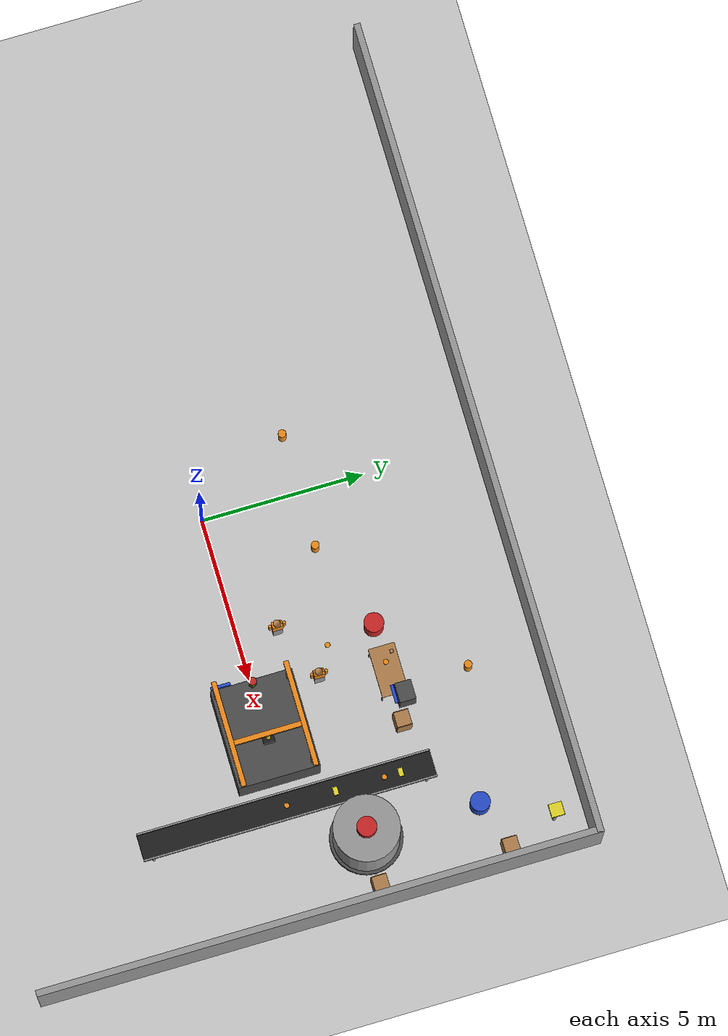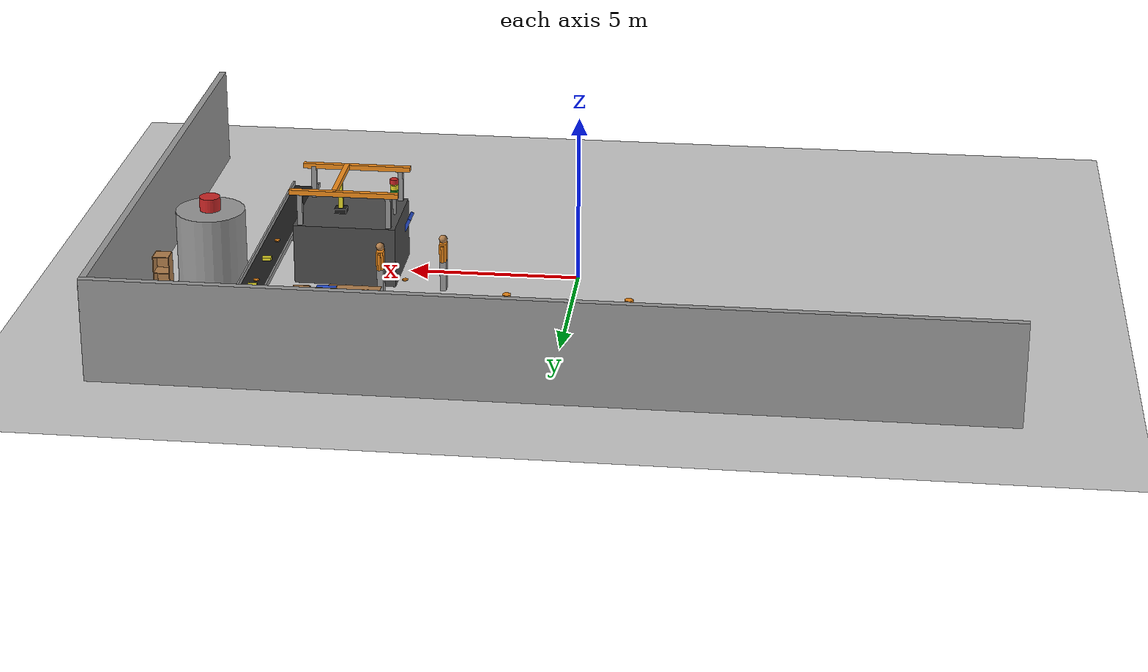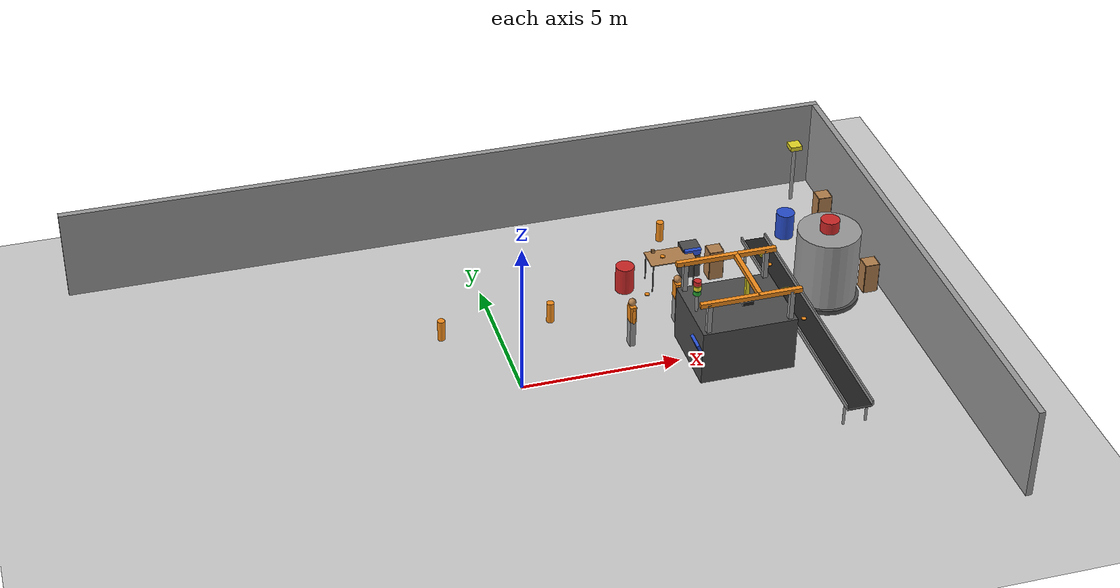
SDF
<sdf version="1.7">
 <world name="default">
  <model name="ground_plane">
   <static>1</static>
   <link name="link">
    <collision name="collision">
     <geometry><plane><normal>0 0 1</normal><size>100 100</size></plane></geometry>
     <surface><friction><ode><mu>100</mu><mu2>50</mu2></ode></friction></surface>
    </collision>
    <visual name="visual">
     <cast_shadows>0</cast_shadows>
     <geometry><plane><normal>0 0 1</normal><size>100 100</size></plane></geometry>
     <material>
      <script><uri>file://media/materials/scripts/gazebo.material</uri><name>Gazebo/Grey</name></script>
     </material>
    </visual>
   </link>
  </model>
  <model name="table_2">
   <static>1</static>
   <link name="link">
    <collision name="surface">
     <pose>0 0 1 0 -0 0</pose>
     <geometry><box><size>1.5 0.8 0.03</size></box></geometry>
     <surface><friction><ode><mu>0.6</mu><mu2>0.6</mu2></ode></friction></surface>
    </collision>
    <visual name="visual1">
     <pose>0 0 1 0 -0 0</pose>
     <geometry><box><size>1.5 0.8 0.03</size></box></geometry>
     <material>
      <script><uri>file://media/materials/scripts/gazebo.material</uri><name>Gazebo/Wood</name></script>
     </material>
    </visual>
    <collision name="front_left_leg">
     <pose>0.68 0.38 0.5 0 -0 0</pose>
     <geometry><cylinder><radius>0.02</radius><length>1</length></cylinder></geometry>
    </collision>
    <visual name="front_left_leg_visual2">
     <pose>0.68 0.38 0.5 0 -0 0</pose>
     <geometry><cylinder><radius>0.02</radius><length>1</length></cylinder></geometry>
     <material>
      <script><uri>file://media/materials/scripts/gazebo.material</uri><name>Gazebo/Grey</name></script>
     </material>
    </visual>
    <collision name="front_right_leg">
     <pose>0.68 -0.38 0.5 0 -0 0</pose>
     <geometry><cylinder><radius>0.02</radius><length>1</length></cylinder></geometry>
    </collision>
    <visual name="front_right_leg_visual2">
     <pose>0.68 -0.38 0.5 0 -0 0</pose>
     <geometry><cylinder><radius>0.02</radius><length>1</length></cylinder></geometry>
     <material>
      <script><uri>file://media/materials/scripts/gazebo.material</uri><name>Gazebo/Grey</name></script>
     </material>
    </visual>
    <collision name="back_right_leg">
     <pose>-0.68 -0.38 0.5 0 -0 0</pose>
     <geometry><cylinder><radius>0.02</radius><length>1</length></cylinder></geometry>
    </collision>
    <visual name="back_right_leg_visual2">
     <pose>-0.68 -0.38 0.5 0 -0 0</pose>
     <geometry><cylinder><radius>0.02</radius><length>1</length></cylinder></geometry>
     <material>
      <script><uri>file://media/materials/scripts/gazebo.material</uri><name>Gazebo/Grey</name></script>
     </material>
    </visual>
    <collision name="back_left_leg">
     <pose>-0.68 0.38 0.5 0 -0 0</pose>
     <geometry><cylinder><radius>0.02</radius><length>1</length></cylinder></geometry>
    </collision>
    <visual name="back_left_leg_visual2">
     <pose>-0.68 0.38 0.5 0 -0 0</pose>
     <geometry><cylinder><radius>0.02</radius><length>1</length></cylinder></geometry>
     <material>
      <script><uri>file://media/materials/scripts/gazebo.material</uri><name>Gazebo/Grey</name></script>
     </material>
    </visual>
   </link>
   <pose>6 4 0 0 -0 0</pose>
  </model>
  <model name="cabinet_1">
   <static>1</static>
   <link name="cabinet_bottom_plate">
    <inertial>
     <pose>0 0 -1 0 -0 0</pose>
     <inertia><ixx>2.05</ixx><ixy>0</ixy><ixz>0</ixz><iyy>2.05</iyy><iyz>0</iyz><izz>2.05</izz></inertia>
     <mass>25</mass>
    </inertial>
    <collision name="cabinet_bottom_plate_geom">
     <pose>0 0 0.01 0 -0 0</pose>
     <geometry><box><size>0.45 0.45 0.02</size></box></geometry>
    </collision>
    <visual name="cabinet_bottom_plate_geom_visual">
     <pose>0 0 0.01 0 -0 0</pose>
     <geometry><box><size>0.45 0.45 0.02</size></box></geometry>
     <material>
      <script><uri>file://media/materials/scripts/gazebo.material</uri><name>Gazebo/Wood</name></script>
     </material>
    </visual>
    <collision name="cabinet_bottom_plate_geom_cabinet_back_plate">
     <pose>0.235 0 0.51 0 -0 0</pose>
     <geometry><box><size>0.02 0.45 1.02</size></box></geometry>
    </collision>
    <visual name="cabinet_bottom_plate_geom_cabinet_back_plate_visual">
     <pose>0.235 0 0.51 0 -0 0</pose>
     <geometry><box><size>0.02 0.45 1.02</size></box></geometry>
     <material>
      <script><uri>file://media/materials/scripts/gazebo.material</uri><name>Gazebo/Wood</name></script>
     </material>
    </visual>
    <collision name="cabinet_bottom_plate_geom_cabinet_left_plate">
     <pose>0 0.235 0.51 0 -0 0</pose>
     <geometry><box><size>0.45 0.02 1.02</size></box></geometry>
    </collision>
    <visual name="cabinet_bottom_plate_geom_cabinet_left_plate_visual">
     <pose>0 0.235 0.51 0 -0 0</pose>
     <geometry><box><size>0.45 0.02 1.02</size></box></geometry>
     <material>
      <script><uri>file://media/materials/scripts/gazebo.material</uri><name>Gazebo/Wood</name></script>
     </material>
    </visual>
    <collision name="cabinet_bottom_plate_geom_cabinet_middle_plate">
     <pose>0 0 0.51 0 -0 0</pose>
     <geometry><box><size>0.45 0.45 0.02</size></box></geometry>
    </collision>
    <visual name="cabinet_bottom_plate_geom_cabinet_middle_plate_visual">
     <pose>0 0 0.51 0 -0 0</pose>
     <geometry><box><size>0.45 0.45 0.02</size></box></geometry>
     <material>
      <script><uri>file://media/materials/scripts/gazebo.material</uri><name>Gazebo/Wood</name></script>
     </material>
    </visual>
    <collision name="cabinet_bottom_plate_geom_cabinet_right_plate">
     <pose>0 -0.235 0.51 0 -0 0</pose>
     <geometry><box><size>0.45 0.02 1.02</size></box></geometry>
    </collision>
    <visual name="cabinet_bottom_plate_geom_cabinet_right_plate_visual">
     <pose>0 -0.235 0.51 0 -0 0</pose>
     <geometry><box><size>0.45 0.02 1.02</size></box></geometry>
     <material>
      <script><uri>file://media/materials/scripts/gazebo.material</uri><name>Gazebo/Wood</name></script>
     </material>
    </visual>
    <collision name="cabinet_bottom_plate_geom_cabinet_top_plate">
     <pose>0 0 1.01 0 -0 0</pose>
     <geometry><box><size>0.45 0.45 0.02</size></box></geometry>
    </collision>
    <visual name="cabinet_bottom_plate_geom_cabinet_top_plate_visual">
     <pose>0 0 1.01 0 -0 0</pose>
     <geometry><box><size>0.45 0.45 0.02</size></box></geometry>
     <material>
      <script><uri>file://media/materials/scripts/gazebo.material</uri><name>Gazebo/Wood</name></script>
     </material>
    </visual>
   </link>
   <pose>12 2 0 0 -0 -1.5708</pose>
  </model>
  <model name="cabinet_2">
   <static>1</static>
   <link name="cabinet_bottom_plate">
    <inertial>
     <pose>0 0 -1 0 -0 0</pose>
     <inertia><ixx>2.05</ixx><ixy>0</ixy><ixz>0</ixz><iyy>2.05</iyy><iyz>0</iyz><izz>2.05</izz></inertia>
     <mass>25</mass>
    </inertial>
    <collision name="cabinet_bottom_plate_geom">
     <pose>0 0 0.01 0 -0 0</pose>
     <geometry><box><size>0.45 0.45 0.02</size></box></geometry>
    </collision>
    <visual name="cabinet_bottom_plate_geom_visual">
     <pose>0 0 0.01 0 -0 0</pose>
     <geometry><box><size>0.45 0.45 0.02</size></box></geometry>
     <material>
      <script><uri>file://media/materials/scripts/gazebo.material</uri><name>Gazebo/Wood</name></script>
     </material>
    </visual>
    <collision name="cabinet_bottom_plate_geom_cabinet_back_plate">
     <pose>0.235 0 0.51 0 -0 0</pose>
     <geometry><box><size>0.02 0.45 1.02</size></box></geometry>
    </collision>
    <visual name="cabinet_bottom_plate_geom_cabinet_back_plate_visual">
     <pose>0.235 0 0.51 0 -0 0</pose>
     <geometry><box><size>0.02 0.45 1.02</size></box></geometry>
     <material>
      <script><uri>file://media/materials/scripts/gazebo.material</uri><name>Gazebo/Wood</name></script>
     </material>
    </visual>
    <collision name="cabinet_bottom_plate_geom_cabinet_left_plate">
     <pose>0 0.235 0.51 0 -0 0</pose>
     <geometry><box><size>0.45 0.02 1.02</size></box></geometry>
    </collision>
    <visual name="cabinet_bottom_plate_geom_cabinet_left_plate_visual">
     <pose>0 0.235 0.51 0 -0 0</pose>
     <geometry><box><size>0.45 0.02 1.02</size></box></geometry>
     <material>
      <script><uri>file://media/materials/scripts/gazebo.material</uri><name>Gazebo/Wood</name></script>
     </material>
    </visual>
    <collision name="cabinet_bottom_plate_geom_cabinet_middle_plate">
     <pose>0 0 0.51 0 -0 0</pose>
     <geometry><box><size>0.45 0.45 0.02</size></box></geometry>
    </collision>
    <visual name="cabinet_bottom_plate_geom_cabinet_middle_plate_visual">
     <pose>0 0 0.51 0 -0 0</pose>
     <geometry><box><size>0.45 0.45 0.02</size></box></geometry>
     <material>
      <script><uri>file://media/materials/scripts/gazebo.material</uri><name>Gazebo/Wood</name></script>
     </material>
    </visual>
    <collision name="cabinet_bottom_plate_geom_cabinet_right_plate">
     <pose>0 -0.235 0.51 0 -0 0</pose>
     <geometry><box><size>0.45 0.02 1.02</size></box></geometry>
    </collision>
    <visual name="cabinet_bottom_plate_geom_cabinet_right_plate_visual">
     <pose>0 -0.235 0.51 0 -0 0</pose>
     <geometry><box><size>0.45 0.02 1.02</size></box></geometry>
     <material>
      <script><uri>file://media/materials/scripts/gazebo.material</uri><name>Gazebo/Wood</name></script>
     </material>
    </visual>
    <collision name="cabinet_bottom_plate_geom_cabinet_top_plate">
     <pose>0 0 1.01 0 -0 0</pose>
     <geometry><box><size>0.45 0.45 0.02</size></box></geometry>
    </collision>
    <visual name="cabinet_bottom_plate_geom_cabinet_top_plate_visual">
     <pose>0 0 1.01 0 -0 0</pose>
     <geometry><box><size>0.45 0.45 0.02</size></box></geometry>
     <material>
      <script><uri>file://media/materials/scripts/gazebo.material</uri><name>Gazebo/Wood</name></script>
     </material>
    </visual>
   </link>
   <pose>12 6 0 0 -0 -1.5708</pose>
  </model>
  <model name="wall_north">
   <static>1</static>
   <link name="link">
    <collision name="box_collision"><geometry><box><size>25.2 0.2 3</size></box></geometry></collision>
    <visual name="box_visual">
     <geometry><box><size>25.2 0.2 3</size></box></geometry>
     <material>
      <script><uri>file://media/materials/scripts/gazebo.material</uri><name>Gazebo/Grey</name></script>
     </material>
    </visual>
   </link>
   <pose>0 8.5 1.5 0 -0 0</pose>
  </model>
  <model name="wall_east">
   <static>1</static>
   <link name="link">
    <collision name="box_collision"><geometry><box><size>0.2 17.2 3</size></box></geometry></collision>
    <visual name="box_visual">
     <geometry><box><size>0.2 17.2 3</size></box></geometry>
     <material>
      <script><uri>file://media/materials/scripts/gazebo.material</uri><name>Gazebo/Grey</name></script>
     </material>
    </visual>
   </link>
   <pose>12.5 0 1.5 0 -0 0</pose>
  </model>
  <model name="conveyor_belt">
   <static>1</static>
   <link name="frame">
    <collision name="bed_collision">
     <geometry><box><size>9 0.8 0.05</size></box></geometry>
     <pose>0 0 0.75 0 -0 0</pose>
    </collision>
    <visual name="bed_visual">
     <geometry><box><size>9 0.8 0.05</size></box></geometry>
     <pose>0 0 0.75 0 -0 0</pose>
     <material>
      <script><uri>file://media/materials/scripts/gazebo.material</uri><name>Gazebo/Black</name></script>
     </material>
    </visual>
    <collision name="rail_pos_collision">
     <geometry><box><size>9 0.05 0.15</size></box></geometry>
     <pose>0 0.4 0.85 0 -0 0</pose>
    </collision>
    <visual name="rail_pos_visual">
     <geometry><box><size>9 0.05 0.15</size></box></geometry>
     <pose>0 0.4 0.85 0 -0 0</pose>
     <material>
      <script><uri>file://media/materials/scripts/gazebo.material</uri><name>Gazebo/Grey</name></script>
     </material>
    </visual>
    <collision name="rail_neg_collision">
     <geometry><box><size>9 0.05 0.15</size></box></geometry>
     <pose>0 -0.4 0.85 0 -0 0</pose>
    </collision>
    <visual name="rail_neg_visual">
     <geometry><box><size>9 0.05 0.15</size></box></geometry>
     <pose>0 -0.4 0.85 0 -0 0</pose>
     <material>
      <script><uri>file://media/materials/scripts/gazebo.material</uri><name>Gazebo/Grey</name></script>
     </material>
    </visual>
    <collision name="leg0_collision">
     <geometry><cylinder><radius>0.04</radius><length>0.75</length></cylinder></geometry>
     <pose>4.2 0.35 0.375 0 -0 0</pose>
    </collision>
    <visual name="leg0_visual">
     <geometry><cylinder><radius>0.04</radius><length>0.75</length></cylinder></geometry>
     <pose>4.2 0.35 0.375 0 -0 0</pose>
     <material>
      <script><uri>file://media/materials/scripts/gazebo.material</uri><name>Gazebo/Grey</name></script>
     </material>
    </visual>
    <collision name="leg1_collision">
     <geometry><cylinder><radius>0.04</radius><length>0.75</length></cylinder></geometry>
     <pose>4.2 -0.35 0.375 0 -0 0</pose>
    </collision>
    <visual name="leg1_visual">
     <geometry><cylinder><radius>0.04</radius><length>0.75</length></cylinder></geometry>
     <pose>4.2 -0.35 0.375 0 -0 0</pose>
     <material>
      <script><uri>file://media/materials/scripts/gazebo.material</uri><name>Gazebo/Grey</name></script>
     </material>
    </visual>
    <collision name="leg2_collision">
     <geometry><cylinder><radius>0.04</radius><length>0.75</length></cylinder></geometry>
     <pose>-4.2 0.35 0.375 0 -0 0</pose>
    </collision>
    <visual name="leg2_visual">
     <geometry><cylinder><radius>0.04</radius><length>0.75</length></cylinder></geometry>
     <pose>-4.2 0.35 0.375 0 -0 0</pose>
     <material>
      <script><uri>file://media/materials/scripts/gazebo.material</uri><name>Gazebo/Grey</name></script>
     </material>
    </visual>
    <collision name="leg3_collision">
     <geometry><cylinder><radius>0.04</radius><length>0.75</length></cylinder></geometry>
     <pose>-4.2 -0.35 0.375 0 -0 0</pose>
    </collision>
    <visual name="leg3_visual">
     <geometry><cylinder><radius>0.04</radius><length>0.75</length></cylinder></geometry>
     <pose>-4.2 -0.35 0.375 0 -0 0</pose>
     <material>
      <script><uri>file://media/materials/scripts/gazebo.material</uri><name>Gazebo/Grey</name></script>
     </material>
    </visual>
   </link>
   <pose>9 0 0 0 -0 1.5708</pose>
  </model>
  <model name="wood_cube_ws2">
   <link name="link">
    <pose>0 0 0.05 0 -0 0</pose>
    <inertial>
     <mass>0.5167</mass>
     <inertia>
      <ixx>0.000861167</ixx>
      <ixy>0</ixy>
      <ixz>0</ixz>
      <iyy>0.000861167</iyy>
      <iyz>0</iyz>
      <izz>0.000861167</izz>
     </inertia>
    </inertial>
    <collision name="collision">
     <geometry><box><size>0.1 0.1 0.1</size></box></geometry>
     <surface>
      <contact>
       <poissons_ratio>0.347</poissons_ratio>
       <elastic_modulus>8.8e+09</elastic_modulus>
       <ode><kp>100000</kp><kd>100</kd><max_vel>100</max_vel><min_depth>0.001</min_depth></ode>
      </contact>
      <friction>
       <torsional>
        <coefficient>1</coefficient>
        <use_patch_radius>0</use_patch_radius>
        <surface_radius>0.01</surface_radius>
       </torsional>
      </friction>
     </surface>
    </collision>
    <visual name="visual">
     <geometry><box><size>0.1 0.1 0.1</size></box></geometry>
     <material>
      <script><uri>file://media/materials/scripts/gazebo.material</uri><name>Gazebo/Wood</name></script>
     </material>
    </visual>
   </link>
   <pose>5.5 4.25 1.065 0 -0 0</pose>
  </model>
  <model name="cabinet_ws2">
   <static>1</static>
   <link name="cabinet_bottom_plate">
    <inertial>
     <pose>0 0 -1 0 -0 0</pose>
     <inertia><ixx>2.05</ixx><ixy>0</ixy><ixz>0</ixz><iyy>2.05</iyy><iyz>0</iyz><izz>2.05</izz></inertia>
     <mass>25</mass>
    </inertial>
    <collision name="cabinet_bottom_plate_geom">
     <pose>0 0 0.01 0 -0 0</pose>
     <geometry><box><size>0.45 0.45 0.02</size></box></geometry>
    </collision>
    <visual name="cabinet_bottom_plate_geom_visual">
     <pose>0 0 0.01 0 -0 0</pose>
     <geometry><box><size>0.45 0.45 0.02</size></box></geometry>
     <material>
      <script><uri>file://media/materials/scripts/gazebo.material</uri><name>Gazebo/Wood</name></script>
     </material>
    </visual>
    <collision name="cabinet_bottom_plate_geom_cabinet_back_plate">
     <pose>0.235 0 0.51 0 -0 0</pose>
     <geometry><box><size>0.02 0.45 1.02</size></box></geometry>
    </collision>
    <visual name="cabinet_bottom_plate_geom_cabinet_back_plate_visual">
     <pose>0.235 0 0.51 0 -0 0</pose>
     <geometry><box><size>0.02 0.45 1.02</size></box></geometry>
     <material>
      <script><uri>file://media/materials/scripts/gazebo.material</uri><name>Gazebo/Wood</name></script>
     </material>
    </visual>
    <collision name="cabinet_bottom_plate_geom_cabinet_left_plate">
     <pose>0 0.235 0.51 0 -0 0</pose>
     <geometry><box><size>0.45 0.02 1.02</size></box></geometry>
    </collision>
    <visual name="cabinet_bottom_plate_geom_cabinet_left_plate_visual">
     <pose>0 0.235 0.51 0 -0 0</pose>
     <geometry><box><size>0.45 0.02 1.02</size></box></geometry>
     <material>
      <script><uri>file://media/materials/scripts/gazebo.material</uri><name>Gazebo/Wood</name></script>
     </material>
    </visual>
    <collision name="cabinet_bottom_plate_geom_cabinet_middle_plate">
     <pose>0 0 0.51 0 -0 0</pose>
     <geometry><box><size>0.45 0.45 0.02</size></box></geometry>
    </collision>
    <visual name="cabinet_bottom_plate_geom_cabinet_middle_plate_visual">
     <pose>0 0 0.51 0 -0 0</pose>
     <geometry><box><size>0.45 0.45 0.02</size></box></geometry>
     <material>
      <script><uri>file://media/materials/scripts/gazebo.material</uri><name>Gazebo/Wood</name></script>
     </material>
    </visual>
    <collision name="cabinet_bottom_plate_geom_cabinet_right_plate">
     <pose>0 -0.235 0.51 0 -0 0</pose>
     <geometry><box><size>0.45 0.02 1.02</size></box></geometry>
    </collision>
    <visual name="cabinet_bottom_plate_geom_cabinet_right_plate_visual">
     <pose>0 -0.235 0.51 0 -0 0</pose>
     <geometry><box><size>0.45 0.02 1.02</size></box></geometry>
     <material>
      <script><uri>file://media/materials/scripts/gazebo.material</uri><name>Gazebo/Wood</name></script>
     </material>
    </visual>
    <collision name="cabinet_bottom_plate_geom_cabinet_top_plate">
     <pose>0 0 1.01 0 -0 0</pose>
     <geometry><box><size>0.45 0.45 0.02</size></box></geometry>
    </collision>
    <visual name="cabinet_bottom_plate_geom_cabinet_top_plate_visual">
     <pose>0 0 1.01 0 -0 0</pose>
     <geometry><box><size>0.45 0.45 0.02</size></box></geometry>
     <material>
      <script><uri>file://media/materials/scripts/gazebo.material</uri><name>Gazebo/Wood</name></script>
     </material>
    </visual>
   </link>
   <pose>7.5 4 0 0 -0 -1.5708</pose>
  </model>
  <model name="barrel_5">
   <static>1</static>
   <link name="link">
    <collision name="cyl_collision">
     <geometry><cylinder><radius>0.3</radius><length>0.9</length></cylinder></geometry>
    </collision>
    <visual name="cyl_visual">
     <geometry><cylinder><radius>0.3</radius><length>0.9</length></cylinder></geometry>
     <material>
      <script><uri>file://media/materials/scripts/gazebo.material</uri><name>Gazebo/Red</name></script>
     </material>
    </visual>
   </link>
   <pose>4.5 4 0.45 0 -0 0</pose>
  </model>
  <model name="barrel_7">
   <static>1</static>
   <link name="link">
    <collision name="cyl_collision">
     <geometry><cylinder><radius>0.3</radius><length>0.9</length></cylinder></geometry>
    </collision>
    <visual name="cyl_visual">
     <geometry><cylinder><radius>0.3</radius><length>0.9</length></cylinder></geometry>
     <material>
      <script><uri>file://media/materials/scripts/gazebo.material</uri><name>Gazebo/Blue</name></script>
     </material>
    </visual>
   </link>
   <pose>10.5 5.5 0.45 0 -0 0</pose>
  </model>
  <model name="pylon_2">
   <static>1</static>
   <link name="link">
    <collision name="cyl_collision">
     <geometry><cylinder><radius>0.12</radius><length>0.7</length></cylinder></geometry>
    </collision>
    <visual name="cyl_visual">
     <geometry><cylinder><radius>0.12</radius><length>0.7</length></cylinder></geometry>
     <material>
      <script><uri>file://media/materials/scripts/gazebo.material</uri><name>Gazebo/Orange</name></script>
     </material>
    </visual>
   </link>
   <pose>-1.75 3 0.35 0 -0 0</pose>
  </model>
  <model name="pylon_5">
   <static>1</static>
   <link name="link">
    <collision name="cyl_collision">
     <geometry><cylinder><radius>0.12</radius><length>0.7</length></cylinder></geometry>
    </collision>
    <visual name="cyl_visual">
     <geometry><cylinder><radius>0.12</radius><length>0.7</length></cylinder></geometry>
     <material>
      <script><uri>file://media/materials/scripts/gazebo.material</uri><name>Gazebo/Orange</name></script>
     </material>
    </visual>
   </link>
   <pose>1.75 3 0.35 0 -0 0</pose>
  </model>
  <model name="lamp_3">
   <static>1</static>
   <link name="link">
    <collision name="pole_collision">
     <geometry><cylinder><radius>0.06</radius><length>2</length></cylinder></geometry>
     <pose>0 0 1 0 -0 0</pose>
    </collision>
    <visual name="pole_visual">
     <geometry><cylinder><radius>0.06</radius><length>2</length></cylinder></geometry>
     <pose>0 0 1 0 -0 0</pose>
     <material>
      <script><uri>file://media/materials/scripts/gazebo.material</uri><name>Gazebo/Grey</name></script>
     </material>
    </visual>
    <collision name="head_collision">
     <geometry><box><size>0.4 0.4 0.15</size></box></geometry>
     <pose>0 0 2.075 0 -0 0</pose>
    </collision>
    <visual name="head_visual">
     <geometry><box><size>0.4 0.4 0.15</size></box></geometry>
     <pose>0 0 2.075 0 -0 0</pose>
     <material>
      <script><uri>file://media/materials/scripts/gazebo.material</uri><name>Gazebo/Yellow</name></script>
     </material>
    </visual>
   </link>
   <pose>11.5 7.5 0 0 -0 0</pose>
  </model>
  <model name="console_ws2">
   <static>1</static>
   <link name="link">
    <collision name="body_collision">
     <geometry><box><size>0.6 0.5 1.1</size></box></geometry>
     <pose>0 0 0.55 0 -0 0</pose>
    </collision>
    <visual name="body_visual">
     <geometry><box><size>0.6 0.5 1.1</size></box></geometry>
     <pose>0 0 0.55 0 -0 0</pose>
     <material>
      <script><uri>file://media/materials/scripts/gazebo.material</uri><name>Gazebo/DarkGrey</name></script>
     </material>
    </visual>
    <collision name="panel_collision">
     <geometry><box><size>0.55 0.1 0.3</size></box></geometry>
     <pose>0 0.28 1 -0.4 -0 0</pose>
    </collision>
    <visual name="panel_visual">
     <geometry><box><size>0.55 0.1 0.3</size></box></geometry>
     <pose>0 0.28 1 -0.4 -0 0</pose>
     <material>
      <script><uri>file://media/materials/scripts/gazebo.material</uri><name>Gazebo/Blue</name></script>
     </material>
    </visual>
   </link>
   <pose>6.75 4.3 0 0 -0 3.14159</pose>
  </model>
  <model name="reactor_1">
   <static>1</static>
   <link name="link">
    <collision name="tank_collision">
     <geometry><cylinder><radius>1</radius><length>2.5</length></cylinder></geometry>
     <pose>0 0 1.25 0 -0 0</pose>
    </collision>
    <visual name="tank_visual">
     <geometry><cylinder><radius>1</radius><length>2.5</length></cylinder></geometry>
     <pose>0 0 1.25 0 -0 0</pose>
     <material>
      <script><uri>file://media/materials/scripts/gazebo.material</uri><name>Gazebo/Grey</name></script>
     </material>
    </visual>
    <collision name="cap_collision">
     <geometry><cylinder><radius>0.3</radius><length>0.4</length></cylinder></geometry>
     <pose>0 0 2.7 0 -0 0</pose>
    </collision>
    <visual name="cap_visual">
     <geometry><cylinder><radius>0.3</radius><length>0.4</length></cylinder></geometry>
     <pose>0 0 2.7 0 -0 0</pose>
     <material>
      <script><uri>file://media/materials/scripts/gazebo.material</uri><name>Gazebo/Red</name></script>
     </material>
    </visual>
    <collision name="base_collision">
     <geometry><cylinder><radius>1.1</radius><length>0.15</length></cylinder></geometry>
     <pose>0 0 0.075 0 -0 0</pose>
    </collision>
    <visual name="base_visual">
     <geometry><cylinder><radius>1.1</radius><length>0.15</length></cylinder></geometry>
     <pose>0 0 0.075 0 -0 0</pose>
     <material>
      <script><uri>file://media/materials/scripts/gazebo.material</uri><name>Gazebo/DarkGrey</name></script>
     </material>
    </visual>
   </link>
   <pose>10.5 2 0 0 -0 0</pose>
  </model>
  <model name="part_disc_1">
   <static>1</static>
   <link name="link">
    <collision name="cyl_collision">
     <geometry><cylinder><radius>0.08</radius><length>0.03</length></cylinder></geometry>
    </collision>
    <visual name="cyl_visual">
     <geometry><cylinder><radius>0.08</radius><length>0.03</length></cylinder></geometry>
     <material>
      <script><uri>file://media/materials/scripts/gazebo.material</uri><name>Gazebo/Orange</name></script>
     </material>
    </visual>
   </link>
   <pose>9 0 0.79 0 -0 0</pose>
  </model>
  <model name="part_disc_2">
   <static>1</static>
   <link name="link">
    <collision name="cyl_collision">
     <geometry><cylinder><radius>0.08</radius><length>0.03</length></cylinder></geometry>
    </collision>
    <visual name="cyl_visual">
     <geometry><cylinder><radius>0.08</radius><length>0.03</length></cylinder></geometry>
     <material>
      <script><uri>file://media/materials/scripts/gazebo.material</uri><name>Gazebo/Orange</name></script>
     </material>
    </visual>
   </link>
   <pose>9 3 0.79 0 -0 0</pose>
  </model>
  <model name="part_block_1">
   <static>1</static>
   <link name="link">
    <collision name="box_collision"><geometry><box><size>0.25 0.15 0.1</size></box></geometry></collision>
    <visual name="box_visual">
     <geometry><box><size>0.25 0.15 0.1</size></box></geometry>
     <material>
      <script><uri>file://media/materials/scripts/gazebo.material</uri><name>Gazebo/Yellow</name></script>
     </material>
    </visual>
   </link>
   <pose>9 1.5 0.83 0 -0 0</pose>
  </model>
  <model name="part_block_2">
   <static>1</static>
   <link name="link">
    <collision name="box_collision"><geometry><box><size>0.25 0.15 0.1</size></box></geometry></collision>
    <visual name="box_visual">
     <geometry><box><size>0.25 0.15 0.1</size></box></geometry>
     <material>
      <script><uri>file://media/materials/scripts/gazebo.material</uri><name>Gazebo/Yellow</name></script>
     </material>
    </visual>
   </link>
   <pose>9 3.5 0.83 0 -0 0</pose>
  </model>
  <model name="part_disc_ws2">
   <static>1</static>
   <link name="link">
    <collision name="cyl_collision">
     <geometry><cylinder><radius>0.08</radius><length>0.03</length></cylinder></geometry>
    </collision>
    <visual name="cyl_visual">
     <geometry><cylinder><radius>0.08</radius><length>0.03</length></cylinder></geometry>
     <material>
      <script><uri>file://media/materials/scripts/gazebo.material</uri><name>Gazebo/Orange</name></script>
     </material>
    </visual>
   </link>
   <pose>5.75 4 1.03 0 -0 0</pose>
  </model>
  <model name="part_disc2_2">
   <static>1</static>
   <link name="link">
    <collision name="cyl_collision">
     <geometry><cylinder><radius>0.08</radius><length>0.03</length></cylinder></geometry>
    </collision>
    <visual name="cyl_visual">
     <geometry><cylinder><radius>0.08</radius><length>0.03</length></cylinder></geometry>
     <material>
      <script><uri>file://media/materials/scripts/gazebo.material</uri><name>Gazebo/Orange</name></script>
     </material>
    </visual>
   </link>
   <pose>4.75 2.5 0.79 0 -0 0</pose>
  </model>
  <model name="auto_machine_0">
   <static>1</static>
   <link name="link">
    <collision name="body_collision">
     <geometry><box><size>3 2.5 1.8</size></box></geometry>
     <pose>0 0 0.9 0 -0 0</pose>
    </collision>
    <visual name="body_visual">
     <geometry><box><size>3 2.5 1.8</size></box></geometry>
     <pose>0 0 0.9 0 -0 0</pose>
     <material>
      <script><uri>file://media/materials/scripts/gazebo.material</uri><name>Gazebo/DarkGrey</name></script>
     </material>
    </visual>
    <collision name="panel_collision">
     <geometry><box><size>0.1 0.6 0.4</size></box></geometry>
     <pose>-1.55 -0.9 1.2 0 -0.4 0</pose>
    </collision>
    <visual name="panel_visual">
     <geometry><box><size>0.1 0.6 0.4</size></box></geometry>
     <pose>-1.55 -0.9 1.2 0 -0.4 0</pose>
     <material>
      <script><uri>file://media/materials/scripts/gazebo.material</uri><name>Gazebo/Blue</name></script>
     </material>
    </visual>
    <collision name="col1_collision">
     <geometry><box><size>0.15 0.15 1</size></box></geometry>
     <pose>-1.3 -1.1 2.3 0 -0 0</pose>
    </collision>
    <visual name="col1_visual">
     <geometry><box><size>0.15 0.15 1</size></box></geometry>
     <pose>-1.3 -1.1 2.3 0 -0 0</pose>
     <material>
      <script><uri>file://media/materials/scripts/gazebo.material</uri><name>Gazebo/Grey</name></script>
     </material>
    </visual>
    <collision name="col2_collision">
     <geometry><box><size>0.15 0.15 1</size></box></geometry>
     <pose>-1.3 1.1 2.3 0 -0 0</pose>
    </collision>
    <visual name="col2_visual">
     <geometry><box><size>0.15 0.15 1</size></box></geometry>
     <pose>-1.3 1.1 2.3 0 -0 0</pose>
     <material>
      <script><uri>file://media/materials/scripts/gazebo.material</uri><name>Gazebo/Grey</name></script>
     </material>
    </visual>
    <collision name="col3_collision">
     <geometry><box><size>0.15 0.15 1</size></box></geometry>
     <pose>1.3 -1.1 2.3 0 -0 0</pose>
    </collision>
    <visual name="col3_visual">
     <geometry><box><size>0.15 0.15 1</size></box></geometry>
     <pose>1.3 -1.1 2.3 0 -0 0</pose>
     <material>
      <script><uri>file://media/materials/scripts/gazebo.material</uri><name>Gazebo/Grey</name></script>
     </material>
    </visual>
    <collision name="col4_collision">
     <geometry><box><size>0.15 0.15 1</size></box></geometry>
     <pose>1.3 1.1 2.3 0 -0 0</pose>
    </collision>
    <visual name="col4_visual">
     <geometry><box><size>0.15 0.15 1</size></box></geometry>
     <pose>1.3 1.1 2.3 0 -0 0</pose>
     <material>
      <script><uri>file://media/materials/scripts/gazebo.material</uri><name>Gazebo/Grey</name></script>
     </material>
    </visual>
    <collision name="rail_collision">
     <geometry><box><size>3.2 0.15 0.15</size></box></geometry>
     <pose>0 -1.1 2.8 0 -0 0</pose>
    </collision>
    <visual name="rail_visual">
     <geometry><box><size>3.2 0.15 0.15</size></box></geometry>
     <pose>0 -1.1 2.8 0 -0 0</pose>
     <material>
      <script><uri>file://media/materials/scripts/gazebo.material</uri><name>Gazebo/Orange</name></script>
     </material>
    </visual>
    <collision name="rail2_collision">
     <geometry><box><size>3.2 0.15 0.15</size></box></geometry>
     <pose>0 1.1 2.8 0 -0 0</pose>
    </collision>
    <visual name="rail2_visual">
     <geometry><box><size>3.2 0.15 0.15</size></box></geometry>
     <pose>0 1.1 2.8 0 -0 0</pose>
     <material>
      <script><uri>file://media/materials/scripts/gazebo.material</uri><name>Gazebo/Orange</name></script>
     </material>
    </visual>
    <collision name="rail_cross_collision">
     <geometry><box><size>0.15 2.3 0.15</size></box></geometry>
     <pose>0.3 0 2.8 0 -0 0</pose>
    </collision>
    <visual name="rail_cross_visual">
     <geometry><box><size>0.15 2.3 0.15</size></box></geometry>
     <pose>0.3 0 2.8 0 -0 0</pose>
     <material>
      <script><uri>file://media/materials/scripts/gazebo.material</uri><name>Gazebo/Orange</name></script>
     </material>
    </visual>
    <collision name="picker_arm_collision">
     <geometry><box><size>0.12 0.12 0.9</size></box></geometry>
     <pose>0.3 0 2.35 0 -0 0</pose>
    </collision>
    <visual name="picker_arm_visual">
     <geometry><box><size>0.12 0.12 0.9</size></box></geometry>
     <pose>0.3 0 2.35 0 -0 0</pose>
     <material>
      <script><uri>file://media/materials/scripts/gazebo.material</uri><name>Gazebo/Yellow</name></script>
     </material>
    </visual>
    <collision name="picker_head_collision">
     <geometry><box><size>0.35 0.35 0.15</size></box></geometry>
     <pose>0.3 0 1.85 0 -0 0</pose>
    </collision>
    <visual name="picker_head_visual">
     <geometry><box><size>0.35 0.35 0.15</size></box></geometry>
     <pose>0.3 0 1.85 0 -0 0</pose>
     <material>
      <script><uri>file://media/materials/scripts/gazebo.material</uri><name>Gazebo/Black</name></script>
     </material>
    </visual>
    <collision name="tower_pole_collision">
     <geometry><cylinder><radius>0.05</radius><length>0.6</length></cylinder></geometry>
     <pose>-1.3 0 2.1 0 -0 0</pose>
    </collision>
    <visual name="tower_pole_visual">
     <geometry><cylinder><radius>0.05</radius><length>0.6</length></cylinder></geometry>
     <pose>-1.3 0 2.1 0 -0 0</pose>
     <material>
      <script><uri>file://media/materials/scripts/gazebo.material</uri><name>Gazebo/Grey</name></script>
     </material>
    </visual>
    <collision name="light_green_collision">
     <geometry><cylinder><radius>0.12</radius><length>0.15</length></cylinder></geometry>
     <pose>-1.3 0 2.475 0 -0 0</pose>
    </collision>
    <visual name="light_green_visual">
     <geometry><cylinder><radius>0.12</radius><length>0.15</length></cylinder></geometry>
     <pose>-1.3 0 2.475 0 -0 0</pose>
     <material>
      <script><uri>file://media/materials/scripts/gazebo.material</uri><name>Gazebo/Green</name></script>
     </material>
    </visual>
    <collision name="light_yellow_collision">
     <geometry><cylinder><radius>0.12</radius><length>0.15</length></cylinder></geometry>
     <pose>-1.3 0 2.65 0 -0 0</pose>
    </collision>
    <visual name="light_yellow_visual">
     <geometry><cylinder><radius>0.12</radius><length>0.15</length></cylinder></geometry>
     <pose>-1.3 0 2.65 0 -0 0</pose>
     <material>
      <script><uri>file://media/materials/scripts/gazebo.material</uri><name>Gazebo/Yellow</name></script>
     </material>
    </visual>
    <collision name="light_red_collision">
     <geometry><cylinder><radius>0.12</radius><length>0.15</length></cylinder></geometry>
     <pose>-1.3 0 2.825 0 -0 0</pose>
    </collision>
    <visual name="light_red_visual">
     <geometry><cylinder><radius>0.12</radius><length>0.15</length></cylinder></geometry>
     <pose>-1.3 0 2.825 0 -0 0</pose>
     <material>
      <script><uri>file://media/materials/scripts/gazebo.material</uri><name>Gazebo/Red</name></script>
     </material>
    </visual>
   </link>
   <pose>6.75 0 0 0 -0 0</pose>
  </model>
  <model name="worker_conveyor_2">
   <static>1</static>
   <link name="link">
    <collision name="legs_collision">
     <geometry><box><size>0.3 0.18 0.9</size></box></geometry>
     <pose>0 0 0.45 0 -0 0</pose>
    </collision>
    <visual name="legs_visual">
     <geometry><box><size>0.3 0.18 0.9</size></box></geometry>
     <pose>0 0 0.45 0 -0 0</pose>
     <material>
      <script><uri>file://media/materials/scripts/gazebo.material</uri><name>Gazebo/Grey</name></script>
     </material>
    </visual>
    <collision name="torso_collision">
     <geometry><box><size>0.32 0.2 0.55</size></box></geometry>
     <pose>0 0 1.175 0 -0 0</pose>
    </collision>
    <visual name="torso_visual">
     <geometry><box><size>0.32 0.2 0.55</size></box></geometry>
     <pose>0 0 1.175 0 -0 0</pose>
     <material>
      <script><uri>file://media/materials/scripts/gazebo.material</uri><name>Gazebo/Orange</name></script>
     </material>
    </visual>
    <collision name="arm_l_collision">
     <geometry><cylinder><radius>0.045</radius><length>0.5</length></cylinder></geometry>
     <pose>0.22 0 1.175 0 -0 0</pose>
    </collision>
    <visual name="arm_l_visual">
     <geometry><cylinder><radius>0.045</radius><length>0.5</length></cylinder></geometry>
     <pose>0.22 0 1.175 0 -0 0</pose>
     <material>
      <script><uri>file://media/materials/scripts/gazebo.material</uri><name>Gazebo/Orange</name></script>
     </material>
    </visual>
    <collision name="arm_r_collision">
     <geometry><cylinder><radius>0.045</radius><length>0.5</length></cylinder></geometry>
     <pose>-0.22 0 1.175 0 -0 0</pose>
    </collision>
    <visual name="arm_r_visual">
     <geometry><cylinder><radius>0.045</radius><length>0.5</length></cylinder></geometry>
     <pose>-0.22 0 1.175 0 -0 0</pose>
     <material>
      <script><uri>file://media/materials/scripts/gazebo.material</uri><name>Gazebo/Orange</name></script>
     </material>
    </visual>
    <collision name="head_collision">
     <geometry><sphere><radius>0.12</radius></sphere></geometry>
     <pose>0 0 1.57 0 -0 0</pose>
    </collision>
    <visual name="head_visual">
     <geometry><sphere><radius>0.12</radius></sphere></geometry>
     <pose>0 0 1.57 0 -0 0</pose>
     <material>
      <script><uri>file://media/materials/scripts/gazebo.material</uri><name>Gazebo/Wood</name></script>
     </material>
    </visual>
   </link>
   <pose>5.55 2 0 0 -0 1.5708</pose>
  </model>
  <model name="worker_conveyor_2_clone">
   <static>1</static>
   <link name="link">
    <collision name="legs_collision">
     <geometry><box><size>0.3 0.18 0.9</size></box></geometry>
     <pose>0 0 0.45 0 -0 0</pose>
    </collision>
    <visual name="legs_visual">
     <geometry><box><size>0.3 0.18 0.9</size></box></geometry>
     <pose>0 0 0.45 0 -0 0</pose>
     <material>
      <script><uri>file://media/materials/scripts/gazebo.material</uri><name>Gazebo/Grey</name></script>
     </material>
    </visual>
    <collision name="torso_collision">
     <geometry><box><size>0.32 0.2 0.55</size></box></geometry>
     <pose>0 0 1.175 0 -0 0</pose>
    </collision>
    <visual name="torso_visual">
     <geometry><box><size>0.32 0.2 0.55</size></box></geometry>
     <pose>0 0 1.175 0 -0 0</pose>
     <material>
      <script><uri>file://media/materials/scripts/gazebo.material</uri><name>Gazebo/Orange</name></script>
     </material>
    </visual>
    <collision name="arm_l_collision">
     <geometry><cylinder><radius>0.045</radius><length>0.5</length></cylinder></geometry>
     <pose>0.22 0 1.175 0 -0 0</pose>
    </collision>
    <visual name="arm_l_visual">
     <geometry><cylinder><radius>0.045</radius><length>0.5</length></cylinder></geometry>
     <pose>0.22 0 1.175 0 -0 0</pose>
     <material>
      <script><uri>file://media/materials/scripts/gazebo.material</uri><name>Gazebo/Orange</name></script>
     </material>
    </visual>
    <collision name="arm_r_collision">
     <geometry><cylinder><radius>0.045</radius><length>0.5</length></cylinder></geometry>
     <pose>-0.22 0 1.175 0 -0 0</pose>
    </collision>
    <visual name="arm_r_visual">
     <geometry><cylinder><radius>0.045</radius><length>0.5</length></cylinder></geometry>
     <pose>-0.22 0 1.175 0 -0 0</pose>
     <material>
      <script><uri>file://media/materials/scripts/gazebo.material</uri><name>Gazebo/Orange</name></script>
     </material>
    </visual>
    <collision name="head_collision">
     <geometry><sphere><radius>0.12</radius></sphere></geometry>
     <pose>0 0 1.57 0 -0 0</pose>
    </collision>
    <visual name="head_visual">
     <geometry><sphere><radius>0.12</radius></sphere></geometry>
     <pose>0 0 1.57 0 -0 0</pose>
     <material>
      <script><uri>file://media/materials/scripts/gazebo.material</uri><name>Gazebo/Wood</name></script>
     </material>
    </visual>
   </link>
   <pose>3.83114 1.21547 -0 0 -0 1.5708</pose>
  </model>
  <model name="pylon_5_clone">
   <static>1</static>
   <link name="link">
    <collision name="cyl_collision">
     <geometry><cylinder><radius>0.12</radius><length>0.7</length></cylinder></geometry>
    </collision>
    <visual name="cyl_visual">
     <geometry><cylinder><radius>0.12</radius><length>0.7</length></cylinder></geometry>
     <material>
      <script><uri>file://media/materials/scripts/gazebo.material</uri><name>Gazebo/Orange</name></script>
     </material>
    </visual>
   </link>
   <pose>6.45434 6.33534 0.35 0 -0 0</pose>
  </model>
 </world>
</sdf>
